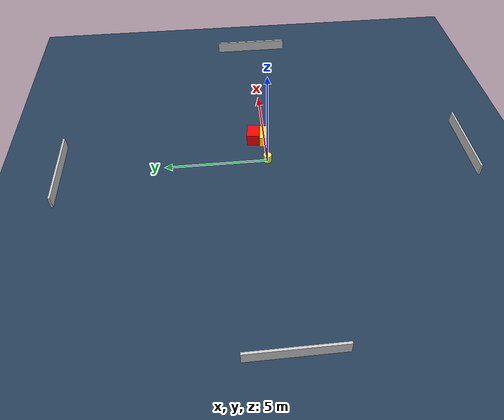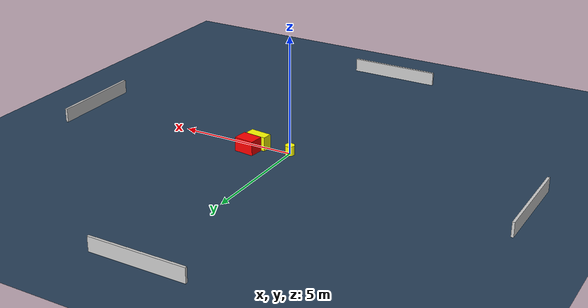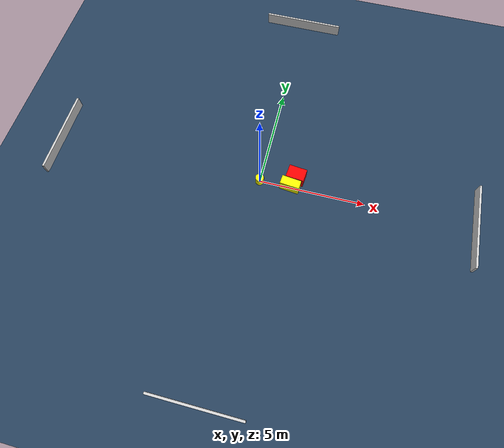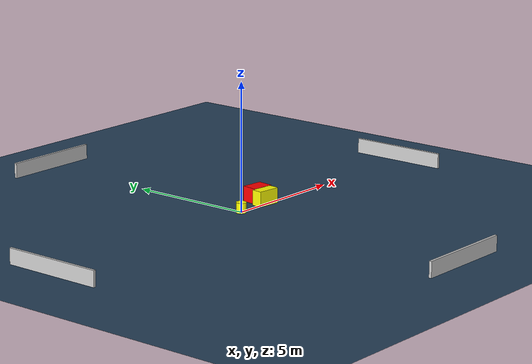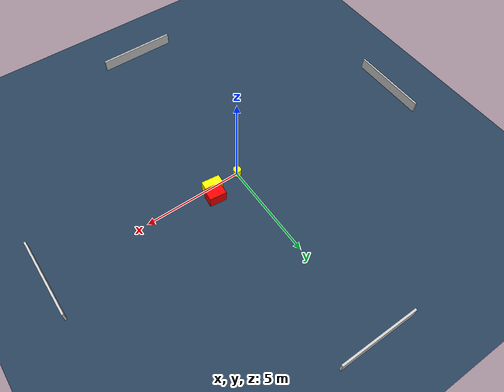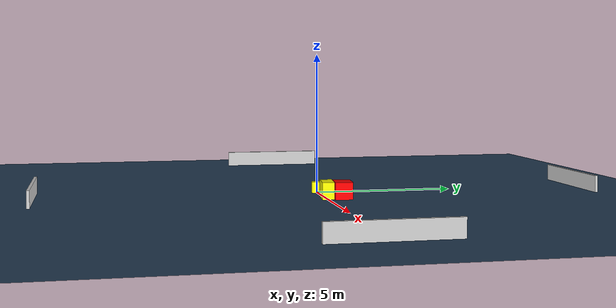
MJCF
<?xml version="1.0" ?>
<mujoco model="generated_environment">
  <option timestep="0.01" integrator="RK4" cone="elliptic"/>
  <default>
    <geom density="1"/>
  </default>
  <asset>
    <texture builtin="gradient" height="3072" name="skybox" rgb1="0.3 0.5 0.7" rgb2="0 0 0" type="skybox" width="512"/>
    <texture builtin="checker" height="300" name="groundplane" rgb1="0.2 0.3 0.4" rgb2="0.1 0.2 0.3" type="2d" width="300"/>
    <material name="groundplane" reflectance="0.2" texrepeat="5 5" texture="groundplane"/>
  </asset>
  <worldbody>
    <light dir="0 0 -1" directional="true" pos="0 0 1.5"/>
    <geom condim="3" friction="0.5 0.005 0.001" material="groundplane" name="floor" pos="0 0 0" size="0 0 0.05" type="plane"/>
    <body name="walls">
      <geom name="wall_1" condim="4" pos="-10.0 0.0 0.3" rgba="0.800000011920929 0.800000011920929 0.800000011920929 1.0" size="0.05 2.0 0.3" type="box"/>
      <geom name="wall_2" condim="4" pos="10.0 0.0 0.3" rgba="0.800000011920929 0.800000011920929 0.800000011920929 1.0" size="0.05 2.0 0.3" type="box"/>
      <geom name="wall_3" condim="4" pos="0.0 -10.0 0.3" rgba="0.800000011920929 0.800000011920929 0.800000011920929 1.0" size="2.0 0.05 0.3" type="box"/>
      <geom name="wall_4" condim="4" pos="0.0 10.0 0.3" rgba="0.800000011920929 0.800000011920929 0.800000011920929 1.0" size="2.0 0.05 0.3" type="box"/>
    </body>
    <body name="robot">
      <joint name="joint_x" type="slide" pos="0 0 0" axis="1 0 0"/>
      <joint name="joint_y" type="slide" pos="0 0 0" axis="0 1 0"/>
      <geom name="robot" type="cylinder" pos="0.0 0.0 0.2" size="0.2 0.2 0.0" mass="5.0" friction="1.0 0.005 0.0001" condim="4" rgba="1.0 1.0 0.0 1.0"/>
    </body>
    <body name="obstacle_1_movable">
      <geom name="obstacle_1_movable" condim="4" pos="1.4654304176552162 0.04089266944174538 0.3" euler="0 0 263.9617075092991" friction="0.0 0.005 0.001" rgba="1.0 1.0 0.0 1.0" size="0.20903700230706507 0.45926301903103606 0.3" type="box" mass="0.1"/>
      <joint type="free"/>
    </body>
    <body name="obstacle_2_static">
      <geom name="obstacle_2_static" condim="4" pos="1.631740599673162 0.5642961738150172 0.3" euler="0 0 264.04799198385325" friction="0.0 0.005 0.001" rgba="1.0 0.0 0.0 1.0" size="0.3091080717636497 0.42928871291419357 0.3" type="box"/>
    </body>
  </worldbody>
  <actuator>
    <motor name="actuator_x" joint="joint_x" gear="1" ctrlrange="-1 1"/>
    <motor name="actuator_y" joint="joint_y" gear="1" ctrlrange="-1 1"/>
  </actuator>
</mujoco>
